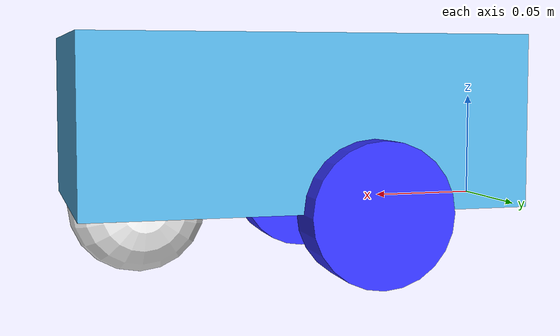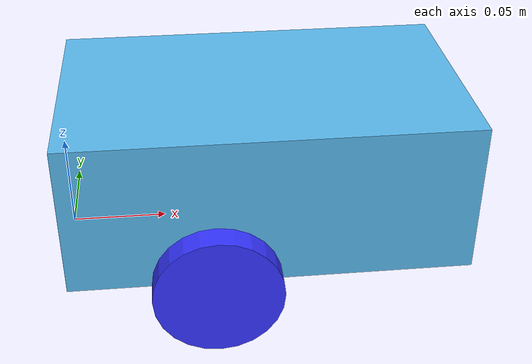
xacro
<?xml version="1.0"?>
<robot name="maus" xmlns:xacro="http://www.ros.org/wiki/xacro">

    <xacro:include filename="inertial_macros.xacro" />

    <xacro:property name="chassis_length" value="0.206" />
    <xacro:property name="chassis_width" value="0.125" />
    <xacro:property name="chassis_height" value="0.08" />
    <xacro:property name="com_to_axis" value="0.028" />
    <xacro:property name="base_to_imu" value="0.025" />
    <xacro:property name="wheel_separation" value="0.127" />
    <xacro:property name="wheel_width" value="0.025" />
    <xacro:property name="wheel_radius" value="0.033" />
    <xacro:property name="wheel_mass" value="0.05" />
    <xacro:property name="caster_wheel_radius" value="0.033" />
    <xacro:property name="caster_wheel_mass" value="0.01" />

    <!-- COLORS -->
    <material name="white">
        <color rgba="1 1 1 1" />
    </material>

    <material name="orange">
        <color rgba="1 0.3 0.1 1" />
    </material>

    <material name="blue">
        <color rgba="0.2 0.2 1 1" />
    </material>

    <material name="black">
        <color rgba="0 0 0 1" />
    </material>

    <material name="red">
        <color rgba="1 0 0 1" />
    </material>

    <!-- LINKS -->
    <link name="base_link">
    </link>

    <link name="chassis_link">

      <visual>
        <geometry>
          <box size="${chassis_length} ${chassis_width} ${chassis_height}"/>
            </geometry>
            <origin xyz="${com_to_axis} 0 ${chassis_height/2}" rpy="0 0 0" />
        <collision>
            <origin xyz="${com_to_axis} 0 ${chassis_height/2}" rpy="0 0 0" />
            <box size="${chassis_length} ${chassis_width} ${chassis_height}"/>
            <geometry>
                <box size="${chassis_length} ${chassis_width} ${chassis_height}"/>
            </geometry>
            <xacro:inertial_box mass="0.5" x="${chassis_length}" y="${chassis_width}"
                z="${chassis_height}">
                <origin xyz="${com_to_axis} 0 0" rpy="0 0 0" />
            </xacro:inertial_box>
        </collision>
      </visual>
    </link>

    <link name="left_wheel_link">
      <visual>
            <geometry>
                <cylinder radius="${wheel_radius}" length="${wheel_width}" />
            </geometry>
            <material name="blue" />
      </visual>
      <collision>
        <geometry>
                <cylinder radius="${wheel_radius}" length="${wheel_width}" />
        </geometry>
      </collision>
        <xacro:inertial_cylinder mass="${wheel_mass}" length="${wheel_width}"
            radius="${wheel_radius}">
            <origin xyz="0 0 0" rpy="0 0 0" />
        </xacro:inertial_cylinder>
    </link>

    <link name="right_wheel_link">
      <visual>
            <geometry>
                <cylinder radius="${wheel_radius}" length="${wheel_width}" />
            </geometry>
            <material name="blue" />
      </visual>
      <collision>
        <geometry>
                <cylinder radius="${wheel_radius}" length="${wheel_width}" />
        </geometry>
      </collision>
        <xacro:inertial_cylinder mass="${wheel_mass}" length="${wheel_width}"
            radius="${wheel_radius}">
            <origin xyz="0 0 0" rpy="0 0 0" />
        </xacro:inertial_cylinder>
    </link>

    <link name="caster_wheel_link">
        <visual>
            <geometry>
                <sphere radius="${caster_wheel_radius}" />
            </geometry>
            <material name="white" />
        </visual>
        <collision>
            <geometry>
                <sphere radius="${caster_wheel_radius}" />
            </geometry>
        </collision>
        <xacro:inertial_sphere mass="${caster_wheel_mass}" radius="${caster_wheel_radius}">
            <origin xyz="0 0 0" rpy="0 0 0" />
        </xacro:inertial_sphere>
    </link>

    <link name="imu_link">
    </link>

<!-- JOINTS -->

    <joint name="chassis_joint" type="fixed">
      <parent link="base_link"/>
      <child link="chassis_link" />
      <origin xyz="${chassis_length/2 - com_to_axis} 0 0 "/>
    </joint>

    <joint name="left_wheel_joint" type="continuous">
      <parent link="chassis_link" />
      <child link="left_wheel_link" />
      <origin xyz="0 ${wheel_separation/2} 0" rpy="-${pi/2} 0 0" />
      <axis xyz="0 0 1" />
    </joint>

    <joint name="right_wheel_joint" type="continuous">
      <parent link="chassis_link" />
      <child link="right_wheel_link" />
      <origin xyz="0 ${-wheel_separation/2} 0" rpy="${pi/2} 0 0" />
      <axis xyz="0 0 -1" />
    </joint>

    <joint name="caster_wheel_joint" type="fixed">
      <parent link="chassis_link"/>
      <child link="caster_wheel_link"/>
      <origin xyz="${chassis_length/2 + com_to_axis - caster_wheel_radius}  0 0" rpy="${pi/2} 0 0" />
    </joint>

    <joint name="imu_joint" type="fixed">
      <parent link="base_link"/>
      <child link="imu_link"/>
      <origin xyz="${base_to_imu} 0 0" rpy="${pi/2} 0 0" />
    </joint>
</robot>
